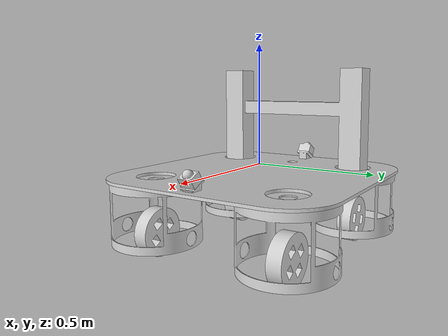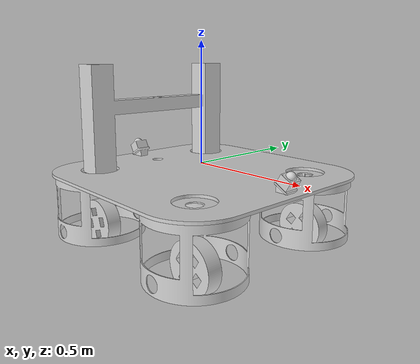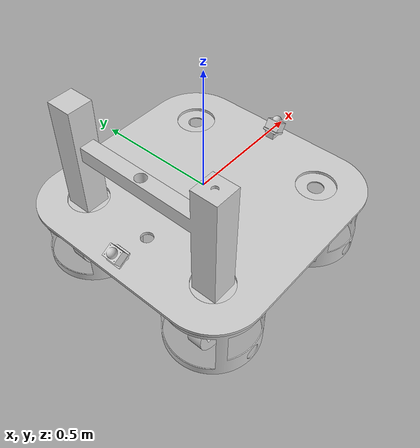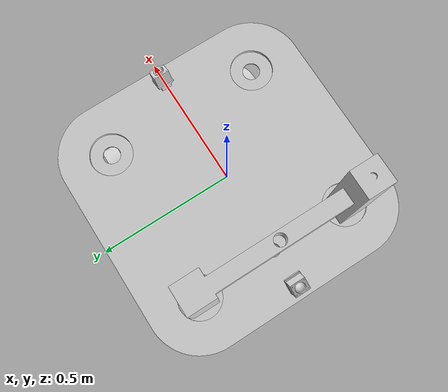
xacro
<?xml version="1.0" encoding="UTF-8"?>
<!-- Active-suspension CAD frame: Z up, X forward, +Y left after package alignment. -->
<robot xmlns:xacro="http://wiki.ros.org/xacro" name="robot_v3_chassis">
  <xacro:macro name="v3_chassis_geometry" params="mesh_name">
    <visual>
      <material name="robot_v3_gray">
        <color rgba="0.82 0.82 0.82 1"/>
      </material>
      <origin xyz="0 0 0" rpy="0 0 0"/>
      <geometry>
        <mesh filename="package://alfa_robot_description/meshes/active_suspension/${mesh_name}" scale="0.001 0.001 0.001"/>
      </geometry>
    </visual>
    <collision>
      <origin xyz="0 0 0" rpy="0 0 0"/>
      <geometry>
        <mesh filename="package://alfa_robot_description/meshes/active_suspension/${mesh_name}" scale="0.001 0.001 0.001"/>
      </geometry>
    </collision>
  </xacro:macro>

  <xacro:macro name="v3_chassis_link" params="link_name mesh_name mass com ixx ixy ixz iyy iyz izz">
    <link name="${link_name}">
      <inertial>
        <mass value="${mass}"/>
        <origin xyz="${com}" rpy="0 0 0"/>
        <inertia ixx="${ixx}" ixy="${ixy}" ixz="${ixz}" iyy="${iyy}" iyz="${iyz}" izz="${izz}"/>
      </inertial>
      <xacro:v3_chassis_geometry mesh_name="${mesh_name}"/>
    </link>
  </xacro:macro>

  <xacro:macro name="v3_chassis_revolute" params="joint_name parent child xyz rpy">
    <joint name="${joint_name}" type="revolute">
      <parent link="${parent}"/>
      <child link="${child}"/>
      <origin xyz="${xyz}" rpy="${rpy}"/>
      <axis xyz="0 0 1"/>
      <limit lower="-3.14159" upper="3.14159" effort="10" velocity="1"/>
    </joint>
  </xacro:macro>

  <!-- Keep the reviewed fixed plate and mounting hardware. The active-suspension
       source base_link contains the same plate plus the upper robot aggregate. -->
  <link name="chassis_base">
    <inertial>
      <origin xyz="0.00064503082 0 -0.038059754" rpy="0 0 0"/>
      <mass value="13.23965"/>
      <inertia ixx="0.99304511" iyy="1.0896488" izz="2.0804482" ixy="-5.7524175e-12" ixz="1.3024357e-05" iyz="0"/>
    </inertial>
    <visual>
      <material name="robot_v3_gray"><color rgba="0.82 0.82 0.82 1"/></material>
      <origin xyz="0 0 -0.045584858" rpy="0 0 0"/>
      <geometry><mesh filename="package://alfa_robot_description/meshes/chassis/part_001_solid_001.stl" scale="0.001 0.001 0.001"/></geometry>
    </visual>
    <collision>
      <origin xyz="0 0 -0.045584858" rpy="0 0 0"/>
      <geometry><mesh filename="package://alfa_robot_description/meshes/chassis/part_001_solid_001.stl" scale="0.001 0.001 0.001"/></geometry>
    </collision>
    <visual>
      <material name="robot_v3_gray"><color rgba="0.82 0.82 0.82 1"/></material>
      <origin xyz="0 0 -0.045584858" rpy="0 0 0"/>
      <geometry><mesh filename="package://alfa_robot_description/meshes/chassis/part_015_solid_015.stl" scale="0.001 0.001 0.001"/></geometry>
    </visual>
    <collision>
      <origin xyz="0 0 -0.045584858" rpy="0 0 0"/>
      <geometry><mesh filename="package://alfa_robot_description/meshes/chassis/part_015_solid_015.stl" scale="0.001 0.001 0.001"/></geometry>
    </collision>
    <visual>
      <material name="robot_v3_gray"><color rgba="0.82 0.82 0.82 1"/></material>
      <origin xyz="0 0 -0.045584858" rpy="0 0 0"/>
      <geometry><mesh filename="package://alfa_robot_description/meshes/chassis/part_014_solid_014.stl" scale="0.001 0.001 0.001"/></geometry>
    </visual>
    <collision>
      <origin xyz="0 0 -0.045584858" rpy="0 0 0"/>
      <geometry><mesh filename="package://alfa_robot_description/meshes/chassis/part_014_solid_014.stl" scale="0.001 0.001 0.001"/></geometry>
    </collision>
    <visual>
      <material name="robot_v3_gray"><color rgba="0.82 0.82 0.82 1"/></material>
      <origin xyz="0 0 -0.045584858" rpy="0 0 0"/>
      <geometry><mesh filename="package://alfa_robot_description/meshes/chassis/part_016_solid_016.stl" scale="0.001 0.001 0.001"/></geometry>
    </visual>
    <collision>
      <origin xyz="0 0 -0.045584858" rpy="0 0 0"/>
      <geometry><mesh filename="package://alfa_robot_description/meshes/chassis/part_016_solid_016.stl" scale="0.001 0.001 0.001"/></geometry>
    </collision>
    <visual>
      <material name="robot_v3_gray"><color rgba="0.82 0.82 0.82 1"/></material>
      <origin xyz="0 0 -0.045584858" rpy="0 0 0"/>
      <geometry><mesh filename="package://alfa_robot_description/meshes/chassis/part_017_solid_017.stl" scale="0.001 0.001 0.001"/></geometry>
    </visual>
    <collision>
      <origin xyz="0 0 -0.045584858" rpy="0 0 0"/>
      <geometry><mesh filename="package://alfa_robot_description/meshes/chassis/part_017_solid_017.stl" scale="0.001 0.001 0.001"/></geometry>
    </collision>
  </link>

  <xacro:v3_chassis_link link_name="caster01" mesh_name="caster01.stl" mass="1.82149343"
    com="-1e-8 0.0050135 0.05782901" ixx="0.03990461" ixy="-1e-8" ixz="0" iyy="0.036453" iyz="-0.00061638" izz="0.04366549"/>
  <xacro:v3_chassis_link link_name="wheel01" mesh_name="wheel01.stl" mass="3.19082025"
    com="1e-8 -1e-8 -0.02999999" ixx="0.00976451" ixy="0" ixz="0" iyy="0.00976451" iyz="0" izz="0.01761453"/>
  <xacro:v3_chassis_link link_name="active_suspension_carriage" mesh_name="active_suspension_carriage.stl" mass="22.11504086"
    com="0.07511946 0.075 -0.45050572" ixx="0.33942132" ixy="0" ixz="-0.00056414" iyy="2.14488094" iyz="0" izz="1.83858913"/>
  <xacro:v3_chassis_link link_name="caster02" mesh_name="caster02.stl" mass="1.82149264"
    com="-1e-8 -0.00501349 0.06282895" ixx="0.03990459" ixy="-1e-8" ixz="0" iyy="0.03645297" iyz="0.00061638" izz="0.04366546"/>
  <xacro:v3_chassis_link link_name="wheel02" mesh_name="wheel02.stl" mass="3.19081971"
    com="0 3e-8 -0.02999999" ixx="0.00976451" ixy="0" ixz="0" iyy="0.00976451" iyz="0" izz="0.01761453"/>
  <xacro:v3_chassis_link link_name="caster03" mesh_name="caster03.stl" mass="1.82149299"
    com="-1e-8 -0.00501347 0.06282889" ixx="0.03990459" ixy="-1e-8" ixz="0" iyy="0.03645297" iyz="0.00061638" izz="0.04366547"/>
  <xacro:v3_chassis_link link_name="wheel03" mesh_name="wheel03.stl" mass="3.19082133"
    com="0 3e-8 0.03" ixx="0.00976452" ixy="0" ixz="0" iyy="0.00976451" iyz="0" izz="0.01761454"/>
  <xacro:v3_chassis_link link_name="caster04" mesh_name="caster04.stl" mass="1.82149378"
    com="-1e-8 -0.00501346 0.06282901" ixx="0.03990462" ixy="-1e-8" ixz="0" iyy="0.03645301" iyz="0.00061638" izz="0.0436655"/>
  <xacro:v3_chassis_link link_name="wheel04" mesh_name="wheel04.stl" mass="3.19082188"
    com="-1e-8 0 0.03" ixx="0.00976452" ixy="0" ixz="0" iyy="0.00976452" iyz="0" izz="0.01761454"/>

  <!-- Front axle remains fixed to chassis_base. These origins include the
       source-base to chassis_base alignment used to retain the reviewed plate. -->
  <xacro:v3_chassis_revolute joint_name="caster01_joint" parent="chassis_base" child="caster01"
    xyz="0.30500113 -0.30495538 -0.05058520824" rpy="-3.14158898 0 0.00000367"/>
  <xacro:v3_chassis_revolute joint_name="wheel01_joint" parent="caster01" child="wheel01"
    xyz="-2e-8 0.03 0.215" rpy="-1.57079633 0 0"/>
  <xacro:v3_chassis_revolute joint_name="caster04_joint" parent="chassis_base" child="caster04"
    xyz="0.30499887 0.30504456 -0.04558296824" rpy="3.14158898 0 -3.14158898"/>
  <xacro:v3_chassis_revolute joint_name="wheel04_joint" parent="caster04" child="wheel04"
    xyz="-2e-8 0.03000002 0.22" rpy="-1.57079633 0 -3.14159265"/>

  <!-- Source Joint_29, renamed. A 0.1565 mm zero-height correction removes
       the source mesh tolerance so all four tyre minima coincide at z=0. -->
  <joint name="active_suspension_joint" type="prismatic">
    <parent link="chassis_base"/>
    <child link="active_suspension_carriage"/>
    <origin xyz="-0.22999973 -0.07495992 0.638259125" rpy="0 -0.00000367 1.5708"/>
    <axis xyz="0 0 1"/>
    <limit lower="-0.15" upper="0" effort="100" velocity="0.1"/>
  </joint>

  <xacro:v3_chassis_revolute joint_name="caster02_joint" parent="active_suspension_carriage" child="caster02"
    xyz="-0.22999997 0.075 -0.68384998" rpy="-3.14159265 0 1.57079633"/>
  <xacro:v3_chassis_revolute joint_name="wheel02_joint" parent="caster02" child="wheel02"
    xyz="0 -0.03 0.22000006" rpy="-1.57079633 0 3.14159265"/>
  <xacro:v3_chassis_revolute joint_name="caster03_joint" parent="active_suspension_carriage" child="caster03"
    xyz="0.38 0.075 -0.68385004" rpy="-3.14159265 0 1.57079633"/>
  <xacro:v3_chassis_revolute joint_name="wheel03_joint" parent="caster03" child="wheel03"
    xyz="0 0.03000002 0.22" rpy="-1.57079633 0 3.14159265"/>
</robot>
